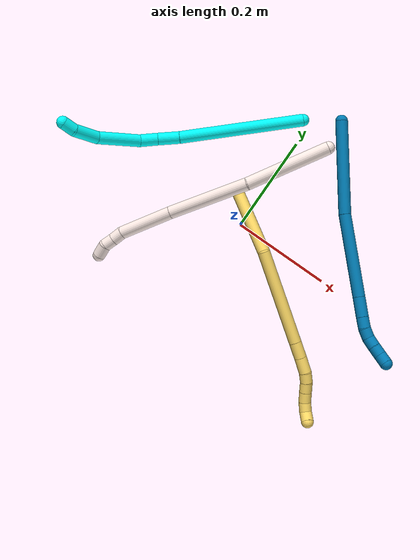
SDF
<sdf version="1.7">
 <world name="default">
  <model name="photoneo_s_sensor">
   <static>1</static>
   <pose>0 0 2 1.57079 1.57079 3.14159</pose>
   <link name="link">
    <inertial><mass>0.1</mass></inertial>
    <sensor name="sensor" type="depth">
     <update_rate>30</update_rate>
     <camera>
      <horizontal_fov>1.22</horizontal_fov>
      <image><width>1920</width><height>1200</height><format>B8G8R8</format></image>
      <clip><near>0.1</near><far>4</far></clip>
      <depth_camera><output>points</output></depth_camera>
     </camera>
     <plugin name="camera_plugin" filename="libgazebo_ros_depth_camera.so">
      <baseline>0.2</baseline>
      <alwaysOn>1</alwaysOn>
      <updateRate>0.0</updateRate>
      <cameraName>camera_ir</cameraName>
      <imageTopicName>/camera/color/image_raw</imageTopicName>
      <cameraInfoTopicName>/camera/color/camera_info</cameraInfoTopicName>
      <depthImageTopicName>/camera/depth/image_raw</depthImageTopicName>
      <depthImageCameraInfoTopicName>/camera/depth/camera_info</depthImageCameraInfoTopicName>
      <pointCloudTopicName>/camera/depth/points</pointCloudTopicName>
      <frameName>fr_optical</frameName>
      <pointCloudCutoff>0.1</pointCloudCutoff>
      <pointCloudCutoffMax>2.0</pointCloudCutoffMax>
      <distortionK1>0</distortionK1>
      <distortionK2>0</distortionK2>
      <distortionK3>0</distortionK3>
      <distortionT1>0</distortionT1>
      <distortionT2>0</distortionT2>
      <CxPrime>0</CxPrime>
      <Cx>0</Cx>
      <Cy>0</Cy>
      <focalLength>0</focalLength>
      <hackBaseline>0</hackBaseline>
     </plugin>
    </sensor>
   </link>
  </model>
  <model name="bin">
   <static>1</static>
   <link name="bottom">
    <collision name="collision-bottom">
     <pose>0 0 -0.01 0 -0 0</pose>
     <geometry><box><size>0.8 0.6 0.02</size></box></geometry>
     <surface>
      <friction><ode><mu>100</mu><mu2>100</mu2></ode></friction>
      <contact><collide_bitmask>65535</collide_bitmask></contact>
     </surface>
    </collision>
   </link>
   <link name="west_wall">
    <collision name="collision-west_wall">
     <pose>-0.41 0 0.1 0 -0 0</pose>
     <geometry><box><size>0.02 0.6 0.2</size></box></geometry>
     <surface>
      <friction><ode><mu>100</mu><mu2>100</mu2></ode></friction>
      <contact><collide_bitmask>65535</collide_bitmask></contact>
     </surface>
    </collision>
   </link>
   <link name="east_wall">
    <collision name="collision-east_wall">
     <pose>0.41 0 0.1 0 -0 0</pose>
     <geometry><box><size>0.02 0.6 0.2</size></box></geometry>
     <surface>
      <friction><ode><mu>100</mu><mu2>100</mu2></ode></friction>
      <contact><collide_bitmask>65535</collide_bitmask></contact>
     </surface>
    </collision>
   </link>
   <link name="south_wall">
    <collision name="collision-south_wall">
     <pose>0 -0.31 0.1 0 -0 0</pose>
     <geometry><box><size>0.8 0.02 0.2</size></box></geometry>
     <surface>
      <friction><ode><mu>100</mu><mu2>100</mu2></ode></friction>
      <contact><collide_bitmask>65535</collide_bitmask></contact>
     </surface>
    </collision>
   </link>
   <link name="north_wall">
    <collision name="collision-north_wall">
     <pose>0 0.31 0.1 0 -0 0</pose>
     <geometry><box><size>0.8 0.02 0.2</size></box></geometry>
     <surface>
      <friction><ode><mu>100</mu><mu2>100</mu2></ode></friction>
      <contact><collide_bitmask>65535</collide_bitmask></contact>
     </surface>
    </collision>
   </link>
  </model>
  <model name="3">
   <static>0</static>
   <link name="3">
    <collision name="collision-cylinder-e_1_1_4">
     <pose>-0.068762 -0.102121 0.024485 1.33547 -0.579728 -0.46201</pose>
     <geometry><cylinder><radius>0.0125</radius><length>0.25105</length></cylinder></geometry>
     <surface>
      <friction><ode><mu>1.16</mu><mu2>1.16</mu2><slip1>0</slip1><slip2>0</slip2></ode></friction>
      <contact><ode><kp>1e+06</kp><kd>1</kd><max_vel>0</max_vel><min_depth>0.001</min_depth></ode></contact>
     </surface>
    </collision>
    <visual name="visual-cylinder-e_1_1_4">
     <pose>-0.068762 -0.102121 0.024485 1.33547 -0.579728 -0.46201</pose>
     <geometry><cylinder><radius>0.0125</radius><length>0.25105</length></cylinder></geometry>
     <material><ambient>0.003922 1 0.996078 1</ambient></material>
    </visual>
    <collision name="collision-cylinder-e_2_4_5">
     <pose>-0.14841 -0.223169 0.05291 1.36558 -0.512849 -0.420189</pose>
     <geometry><cylinder><radius>0.0125</radius><length>0.044373</length></cylinder></geometry>
     <surface>
      <friction><ode><mu>1.16</mu><mu2>1.16</mu2><slip1>0</slip1><slip2>0</slip2></ode></friction>
      <contact><ode><kp>1e+06</kp><kd>1</kd><max_vel>0</max_vel><min_depth>0.001</min_depth></ode></contact>
     </surface>
    </collision>
    <visual name="visual-cylinder-e_2_4_5">
     <pose>-0.14841 -0.223169 0.05291 1.36558 -0.512849 -0.420189</pose>
     <geometry><cylinder><radius>0.0125</radius><length>0.044373</length></cylinder></geometry>
     <material><ambient>0.003922 1 0.996078 1</ambient></material>
    </visual>
    <collision name="collision-cylinder-e_3_5_6">
     <pose>-0.171051 -0.256607 0.05695 1.5639 -0.680803 -0.676476</pose>
     <geometry><cylinder><radius>0.0125</radius><length>0.03735</length></cylinder></geometry>
     <surface>
      <friction><ode><mu>1.16</mu><mu2>1.16</mu2><slip1>0</slip1><slip2>0</slip2></ode></friction>
      <contact><ode><kp>1e+06</kp><kd>1</kd><max_vel>0</max_vel><min_depth>0.001</min_depth></ode></contact>
     </surface>
    </collision>
    <visual name="visual-cylinder-e_3_5_6">
     <pose>-0.171051 -0.256607 0.05695 1.5639 -0.680803 -0.676476</pose>
     <geometry><cylinder><radius>0.0125</radius><length>0.03735</length></cylinder></geometry>
     <material><ambient>0.003922 1 0.996078 1</ambient></material>
    </visual>
    <collision name="collision-cylinder-e_4_6_7">
     <pose>-0.211888 -0.302415 0.042945 1.9942 -0.702872 -1.03222</pose>
     <geometry><cylinder><radius>0.0125</radius><length>0.089985</length></cylinder></geometry>
     <surface>
      <friction><ode><mu>1.16</mu><mu2>1.16</mu2><slip1>0</slip1><slip2>0</slip2></ode></friction>
      <contact><ode><kp>1e+06</kp><kd>1</kd><max_vel>0</max_vel><min_depth>0.001</min_depth></ode></contact>
     </surface>
    </collision>
    <visual name="visual-cylinder-e_4_6_7">
     <pose>-0.211888 -0.302415 0.042945 1.9942 -0.702872 -1.03222</pose>
     <geometry><cylinder><radius>0.0125</radius><length>0.089985</length></cylinder></geometry>
     <material><ambient>0.003922 1 0.996078 1</ambient></material>
    </visual>
    <collision name="collision-cylinder-e_5_7_8">
     <pose>-0.25458 -0.350454 0.014808 2.26841 -0.557115 -1.0997</pose>
     <geometry><cylinder><radius>0.0125</radius><length>0.051473</length></cylinder></geometry>
     <surface>
      <friction><ode><mu>1.16</mu><mu2>1.16</mu2><slip1>0</slip1><slip2>0</slip2></ode></friction>
      <contact><ode><kp>1e+06</kp><kd>1</kd><max_vel>0</max_vel><min_depth>0.001</min_depth></ode></contact>
     </surface>
    </collision>
    <visual name="visual-cylinder-e_5_7_8">
     <pose>-0.25458 -0.350454 0.014808 2.26841 -0.557115 -1.0997</pose>
     <geometry><cylinder><radius>0.0125</radius><length>0.051473</length></cylinder></geometry>
     <material><ambient>0.003922 1 0.996078 1</ambient></material>
    </visual>
    <collision name="collision-cylinder-e_6_8_2">
     <pose>-0.270812 -0.377533 -0.006455 2.1811 -0.20512 -0.390123</pose>
     <geometry><cylinder><radius>0.0125</radius><length>0.02577</length></cylinder></geometry>
     <surface>
      <friction><ode><mu>1.16</mu><mu2>1.16</mu2><slip1>0</slip1><slip2>0</slip2></ode></friction>
      <contact><ode><kp>1e+06</kp><kd>1</kd><max_vel>0</max_vel><min_depth>0.001</min_depth></ode></contact>
     </surface>
    </collision>
    <visual name="visual-cylinder-e_6_8_2">
     <pose>-0.270812 -0.377533 -0.006455 2.1811 -0.20512 -0.390123</pose>
     <geometry><cylinder><radius>0.0125</radius><length>0.02577</length></cylinder></geometry>
     <material><ambient>0.003922 1 0.996078 1</ambient></material>
    </visual>
    <collision name="collision-sphere-2">
     <pose>-0.273437 -0.38787 -0.013684 0 -0 0</pose>
     <geometry><sphere><radius>0.0125</radius></sphere></geometry>
     <surface>
      <friction><ode><mu>1.16</mu><mu2>1.16</mu2><slip1>0</slip1><slip2>0</slip2></ode></friction>
      <contact><ode><kp>1e+06</kp><kd>1</kd><max_vel>0</max_vel><min_depth>0.001</min_depth></ode></contact>
     </surface>
    </collision>
    <visual name="visual-sphere-2">
     <pose>-0.273437 -0.38787 -0.013684 0 -0 0</pose>
     <geometry><sphere><radius>0.0125</radius></sphere></geometry>
     <material><ambient>0.003922 1 0.996078 1</ambient></material>
    </visual>
    <collision name="collision-sphere-4">
     <pose>-0.137524 -0.204242 0.048971 0 -0 0</pose>
     <geometry><sphere><radius>0.0125</radius></sphere></geometry>
     <surface>
      <friction><ode><mu>1.16</mu><mu2>1.16</mu2><slip1>0</slip1><slip2>0</slip2></ode></friction>
      <contact><ode><kp>1e+06</kp><kd>1</kd><max_vel>0</max_vel><min_depth>0.001</min_depth></ode></contact>
     </surface>
    </collision>
    <visual name="visual-sphere-4">
     <pose>-0.137524 -0.204242 0.048971 0 -0 0</pose>
     <geometry><sphere><radius>0.0125</radius></sphere></geometry>
     <material><ambient>0.003922 1 0.996078 1</ambient></material>
    </visual>
    <collision name="collision-sphere-1">
     <geometry><sphere><radius>0.0125</radius></sphere></geometry>
     <surface>
      <friction><ode><mu>1.16</mu><mu2>1.16</mu2><slip1>0</slip1><slip2>0</slip2></ode></friction>
      <contact><ode><kp>1e+06</kp><kd>1</kd><max_vel>0</max_vel><min_depth>0.001</min_depth></ode></contact>
     </surface>
    </collision>
    <visual name="visual-sphere-1">
     <geometry><sphere><radius>0.0125</radius></sphere></geometry>
     <material><ambient>0.003922 1 0.996078 1</ambient></material>
    </visual>
    <collision name="collision-sphere-8">
     <pose>-0.268188 -0.367195 0.000775 0 -0 0</pose>
     <geometry><sphere><radius>0.0125</radius></sphere></geometry>
     <surface>
      <friction><ode><mu>1.16</mu><mu2>1.16</mu2><slip1>0</slip1><slip2>0</slip2></ode></friction>
      <contact><ode><kp>1e+06</kp><kd>1</kd><max_vel>0</max_vel><min_depth>0.001</min_depth></ode></contact>
     </surface>
    </collision>
    <visual name="visual-sphere-8">
     <pose>-0.268188 -0.367195 0.000775 0 -0 0</pose>
     <geometry><sphere><radius>0.0125</radius></sphere></geometry>
     <material><ambient>0.003922 1 0.996078 1</ambient></material>
    </visual>
    <collision name="collision-sphere-5">
     <pose>-0.159296 -0.242096 0.05685 0 -0 0</pose>
     <geometry><sphere><radius>0.0125</radius></sphere></geometry>
     <surface>
      <friction><ode><mu>1.16</mu><mu2>1.16</mu2><slip1>0</slip1><slip2>0</slip2></ode></friction>
      <contact><ode><kp>1e+06</kp><kd>1</kd><max_vel>0</max_vel><min_depth>0.001</min_depth></ode></contact>
     </surface>
    </collision>
    <visual name="visual-sphere-5">
     <pose>-0.159296 -0.242096 0.05685 0 -0 0</pose>
     <geometry><sphere><radius>0.0125</radius></sphere></geometry>
     <material><ambient>0.003922 1 0.996078 1</ambient></material>
    </visual>
    <collision name="collision-sphere-6">
     <pose>-0.182805 -0.271118 0.05705 0 -0 0</pose>
     <geometry><sphere><radius>0.0125</radius></sphere></geometry>
     <surface>
      <friction><ode><mu>1.16</mu><mu2>1.16</mu2><slip1>0</slip1><slip2>0</slip2></ode></friction>
      <contact><ode><kp>1e+06</kp><kd>1</kd><max_vel>0</max_vel><min_depth>0.001</min_depth></ode></contact>
     </surface>
    </collision>
    <visual name="visual-sphere-6">
     <pose>-0.182805 -0.271118 0.05705 0 -0 0</pose>
     <geometry><sphere><radius>0.0125</radius></sphere></geometry>
     <material><ambient>0.003922 1 0.996078 1</ambient></material>
    </visual>
    <collision name="collision-sphere-7">
     <pose>-0.240972 -0.333713 0.028841 0 -0 0</pose>
     <geometry><sphere><radius>0.0125</radius></sphere></geometry>
     <surface>
      <friction><ode><mu>1.16</mu><mu2>1.16</mu2><slip1>0</slip1><slip2>0</slip2></ode></friction>
      <contact><ode><kp>1e+06</kp><kd>1</kd><max_vel>0</max_vel><min_depth>0.001</min_depth></ode></contact>
     </surface>
    </collision>
    <visual name="visual-sphere-7">
     <pose>-0.240972 -0.333713 0.028841 0 -0 0</pose>
     <geometry><sphere><radius>0.0125</radius></sphere></geometry>
     <material><ambient>0.003922 1 0.996078 1</ambient></material>
    </visual>
    <inertial>
     <pose>-0.138773 -0.20021 0.030164 0 -0 0</pose>
     <mass>0.5</mass>
     <inertia>
      <ixx>0.000462</ixx>
      <ixy>0</ixy>
      <ixz>0</ixz>
      <iyy>3.2e-05</iyy>
      <iyz>0</iyz>
      <izz>0.001932</izz>
     </inertia>
    </inertial>
   </link>
   <pose>-0.016723 0.245797 0.010914 2.97542 0.551251 1.62671</pose>
  </model>
  <model name="5">
   <static>0</static>
   <link name="5">
    <collision name="collision-cylinder-e_1_1_4">
     <pose>0.007919 0.009028 0.070058 -0.12816 0.111646 -0.007171</pose>
     <geometry><cylinder><radius>0.0125</radius><length>0.142159</length></cylinder></geometry>
     <surface>
      <friction><ode><mu>1.16</mu><mu2>1.16</mu2><slip1>0</slip1><slip2>0</slip2></ode></friction>
      <contact><ode><kp>1e+06</kp><kd>1</kd><max_vel>0</max_vel><min_depth>0.001</min_depth></ode></contact>
     </surface>
    </collision>
    <visual name="visual-cylinder-e_1_1_4">
     <pose>0.007919 0.009028 0.070058 -0.12816 0.111646 -0.007171</pose>
     <geometry><cylinder><radius>0.0125</radius><length>0.142159</length></cylinder></geometry>
     <material><ambient>1 0.858824 0.4 1</ambient></material>
    </visual>
    <collision name="collision-cylinder-e_2_4_5">
     <pose>0.043481 -0.002175 0.229282 0.223115 0.293588 0.033124</pose>
     <geometry><cylinder><radius>0.0125</radius><length>0.191041</length></cylinder></geometry>
     <surface>
      <friction><ode><mu>1.16</mu><mu2>1.16</mu2><slip1>0</slip1><slip2>0</slip2></ode></friction>
      <contact><ode><kp>1e+06</kp><kd>1</kd><max_vel>0</max_vel><min_depth>0.001</min_depth></ode></contact>
     </surface>
    </collision>
    <visual name="visual-cylinder-e_2_4_5">
     <pose>0.043481 -0.002175 0.229282 0.223115 0.293588 0.033124</pose>
     <geometry><cylinder><radius>0.0125</radius><length>0.191041</length></cylinder></geometry>
     <material><ambient>1 0.858824 0.4 1</ambient></material>
    </visual>
    <collision name="collision-cylinder-e_3_5_6">
     <pose>0.075811 -0.02588 0.333593 0.225465 0.293002 0.033408</pose>
     <geometry><cylinder><radius>0.0125</radius><length>0.032457</length></cylinder></geometry>
     <surface>
      <friction><ode><mu>1.16</mu><mu2>1.16</mu2><slip1>0</slip1><slip2>0</slip2></ode></friction>
      <contact><ode><kp>1e+06</kp><kd>1</kd><max_vel>0</max_vel><min_depth>0.001</min_depth></ode></contact>
     </surface>
    </collision>
    <visual name="visual-cylinder-e_3_5_6">
     <pose>0.075811 -0.02588 0.333593 0.225465 0.293002 0.033408</pose>
     <geometry><cylinder><radius>0.0125</radius><length>0.032457</length></cylinder></geometry>
     <material><ambient>1 0.858824 0.4 1</ambient></material>
    </visual>
    <collision name="collision-cylinder-e_4_6_7">
     <pose>0.084431 -0.032376 0.363849 0.19739 0.249852 0.024868</pose>
     <geometry><cylinder><radius>0.0125</radius><length>0.031812</length></cylinder></geometry>
     <surface>
      <friction><ode><mu>1.16</mu><mu2>1.16</mu2><slip1>0</slip1><slip2>0</slip2></ode></friction>
      <contact><ode><kp>1e+06</kp><kd>1</kd><max_vel>0</max_vel><min_depth>0.001</min_depth></ode></contact>
     </surface>
    </collision>
    <visual name="visual-cylinder-e_4_6_7">
     <pose>0.084431 -0.032376 0.363849 0.19739 0.249852 0.024868</pose>
     <geometry><cylinder><radius>0.0125</radius><length>0.031812</length></cylinder></geometry>
     <material><ambient>1 0.858824 0.4 1</ambient></material>
    </visual>
    <collision name="collision-cylinder-e_5_7_8">
     <pose>0.090032 -0.039379 0.388057 0.412586 0.166474 0.034915</pose>
     <geometry><cylinder><radius>0.0125</radius><length>0.020135</length></cylinder></geometry>
     <surface>
      <friction><ode><mu>1.16</mu><mu2>1.16</mu2><slip1>0</slip1><slip2>0</slip2></ode></friction>
      <contact><ode><kp>1e+06</kp><kd>1</kd><max_vel>0</max_vel><min_depth>0.001</min_depth></ode></contact>
     </surface>
    </collision>
    <visual name="visual-cylinder-e_5_7_8">
     <pose>0.090032 -0.039379 0.388057 0.412586 0.166474 0.034915</pose>
     <geometry><cylinder><radius>0.0125</radius><length>0.020135</length></cylinder></geometry>
     <material><ambient>1 0.858824 0.4 1</ambient></material>
    </visual>
    <collision name="collision-cylinder-e_6_8_9">
     <pose>0.092063 -0.048826 0.405953 0.55577 0.03501 0.009988</pose>
     <geometry><cylinder><radius>0.0125</radius><length>0.020731</length></cylinder></geometry>
     <surface>
      <friction><ode><mu>1.16</mu><mu2>1.16</mu2><slip1>0</slip1><slip2>0</slip2></ode></friction>
      <contact><ode><kp>1e+06</kp><kd>1</kd><max_vel>0</max_vel><min_depth>0.001</min_depth></ode></contact>
     </surface>
    </collision>
    <visual name="visual-cylinder-e_6_8_9">
     <pose>0.092063 -0.048826 0.405953 0.55577 0.03501 0.009988</pose>
     <geometry><cylinder><radius>0.0125</radius><length>0.020731</length></cylinder></geometry>
     <material><ambient>1 0.858824 0.4 1</ambient></material>
    </visual>
    <collision name="collision-cylinder-e_7_9_10">
     <pose>0.092552 -0.059465 0.423984 0.510786 0.011855 0.003095</pose>
     <geometry><cylinder><radius>0.0125</radius><length>0.021166</length></cylinder></geometry>
     <surface>
      <friction><ode><mu>1.16</mu><mu2>1.16</mu2><slip1>0</slip1><slip2>0</slip2></ode></friction>
      <contact><ode><kp>1e+06</kp><kd>1</kd><max_vel>0</max_vel><min_depth>0.001</min_depth></ode></contact>
     </surface>
    </collision>
    <visual name="visual-cylinder-e_7_9_10">
     <pose>0.092552 -0.059465 0.423984 0.510786 0.011855 0.003095</pose>
     <geometry><cylinder><radius>0.0125</radius><length>0.021166</length></cylinder></geometry>
     <material><ambient>1 0.858824 0.4 1</ambient></material>
    </visual>
    <collision name="collision-cylinder-e_8_10_11">
     <pose>0.092943 -0.067511 0.442895 0.288565 0.026367 0.003831</pose>
     <geometry><cylinder><radius>0.0125</radius><length>0.020201</length></cylinder></geometry>
     <surface>
      <friction><ode><mu>1.16</mu><mu2>1.16</mu2><slip1>0</slip1><slip2>0</slip2></ode></friction>
      <contact><ode><kp>1e+06</kp><kd>1</kd><max_vel>0</max_vel><min_depth>0.001</min_depth></ode></contact>
     </surface>
    </collision>
    <visual name="visual-cylinder-e_8_10_11">
     <pose>0.092943 -0.067511 0.442895 0.288565 0.026367 0.003831</pose>
     <geometry><cylinder><radius>0.0125</radius><length>0.020201</length></cylinder></geometry>
     <material><ambient>1 0.858824 0.4 1</ambient></material>
    </visual>
    <collision name="collision-cylinder-e_9_11_2">
     <pose>0.091298 -0.068773 0.462411 -0.162437 -0.189448 0.015467</pose>
     <geometry><cylinder><radius>0.0125</radius><length>0.020298</length></cylinder></geometry>
     <surface>
      <friction><ode><mu>1.16</mu><mu2>1.16</mu2><slip1>0</slip1><slip2>0</slip2></ode></friction>
      <contact><ode><kp>1e+06</kp><kd>1</kd><max_vel>0</max_vel><min_depth>0.001</min_depth></ode></contact>
     </surface>
    </collision>
    <visual name="visual-cylinder-e_9_11_2">
     <pose>0.091298 -0.068773 0.462411 -0.162437 -0.189448 0.015467</pose>
     <geometry><cylinder><radius>0.0125</radius><length>0.020298</length></cylinder></geometry>
     <material><ambient>1 0.858824 0.4 1</ambient></material>
    </visual>
    <collision name="collision-sphere-2">
     <pose>0.089387 -0.067161 0.472247 0 -0 0</pose>
     <geometry><sphere><radius>0.0125</radius></sphere></geometry>
     <surface>
      <friction><ode><mu>1.16</mu><mu2>1.16</mu2><slip1>0</slip1><slip2>0</slip2></ode></friction>
      <contact><ode><kp>1e+06</kp><kd>1</kd><max_vel>0</max_vel><min_depth>0.001</min_depth></ode></contact>
     </surface>
    </collision>
    <visual name="visual-sphere-2">
     <pose>0.089387 -0.067161 0.472247 0 -0 0</pose>
     <geometry><sphere><radius>0.0125</radius></sphere></geometry>
     <material><ambient>1 0.858824 0.4 1</ambient></material>
    </visual>
    <collision name="collision-sphere-11">
     <pose>0.09321 -0.070385 0.452575 0 -0 0</pose>
     <geometry><sphere><radius>0.0125</radius></sphere></geometry>
     <surface>
      <friction><ode><mu>1.16</mu><mu2>1.16</mu2><slip1>0</slip1><slip2>0</slip2></ode></friction>
      <contact><ode><kp>1e+06</kp><kd>1</kd><max_vel>0</max_vel><min_depth>0.001</min_depth></ode></contact>
     </surface>
    </collision>
    <visual name="visual-sphere-11">
     <pose>0.09321 -0.070385 0.452575 0 -0 0</pose>
     <geometry><sphere><radius>0.0125</radius></sphere></geometry>
     <material><ambient>1 0.858824 0.4 1</ambient></material>
    </visual>
    <collision name="collision-sphere-10">
     <pose>0.092677 -0.064638 0.433216 0 -0 0</pose>
     <geometry><sphere><radius>0.0125</radius></sphere></geometry>
     <surface>
      <friction><ode><mu>1.16</mu><mu2>1.16</mu2><slip1>0</slip1><slip2>0</slip2></ode></friction>
      <contact><ode><kp>1e+06</kp><kd>1</kd><max_vel>0</max_vel><min_depth>0.001</min_depth></ode></contact>
     </surface>
    </collision>
    <visual name="visual-sphere-10">
     <pose>0.092677 -0.064638 0.433216 0 -0 0</pose>
     <geometry><sphere><radius>0.0125</radius></sphere></geometry>
     <material><ambient>1 0.858824 0.4 1</ambient></material>
    </visual>
    <collision name="collision-sphere-9">
     <pose>0.092426 -0.054292 0.414753 0 -0 0</pose>
     <geometry><sphere><radius>0.0125</radius></sphere></geometry>
     <surface>
      <friction><ode><mu>1.16</mu><mu2>1.16</mu2><slip1>0</slip1><slip2>0</slip2></ode></friction>
      <contact><ode><kp>1e+06</kp><kd>1</kd><max_vel>0</max_vel><min_depth>0.001</min_depth></ode></contact>
     </surface>
    </collision>
    <visual name="visual-sphere-9">
     <pose>0.092426 -0.054292 0.414753 0 -0 0</pose>
     <geometry><sphere><radius>0.0125</radius></sphere></geometry>
     <material><ambient>1 0.858824 0.4 1</ambient></material>
    </visual>
    <collision name="collision-sphere-4">
     <pose>0.015839 0.018056 0.140115 0 -0 0</pose>
     <geometry><sphere><radius>0.0125</radius></sphere></geometry>
     <surface>
      <friction><ode><mu>1.16</mu><mu2>1.16</mu2><slip1>0</slip1><slip2>0</slip2></ode></friction>
      <contact><ode><kp>1e+06</kp><kd>1</kd><max_vel>0</max_vel><min_depth>0.001</min_depth></ode></contact>
     </surface>
    </collision>
    <visual name="visual-sphere-4">
     <pose>0.015839 0.018056 0.140115 0 -0 0</pose>
     <geometry><sphere><radius>0.0125</radius></sphere></geometry>
     <material><ambient>1 0.858824 0.4 1</ambient></material>
    </visual>
    <collision name="collision-sphere-1">
     <geometry><sphere><radius>0.0125</radius></sphere></geometry>
     <surface>
      <friction><ode><mu>1.16</mu><mu2>1.16</mu2><slip1>0</slip1><slip2>0</slip2></ode></friction>
      <contact><ode><kp>1e+06</kp><kd>1</kd><max_vel>0</max_vel><min_depth>0.001</min_depth></ode></contact>
     </surface>
    </collision>
    <visual name="visual-sphere-1">
     <geometry><sphere><radius>0.0125</radius></sphere></geometry>
     <material><ambient>1 0.858824 0.4 1</ambient></material>
    </visual>
    <collision name="collision-sphere-8">
     <pose>0.0917 -0.04336 0.397152 0 -0 0</pose>
     <geometry><sphere><radius>0.0125</radius></sphere></geometry>
     <surface>
      <friction><ode><mu>1.16</mu><mu2>1.16</mu2><slip1>0</slip1><slip2>0</slip2></ode></friction>
      <contact><ode><kp>1e+06</kp><kd>1</kd><max_vel>0</max_vel><min_depth>0.001</min_depth></ode></contact>
     </surface>
    </collision>
    <visual name="visual-sphere-8">
     <pose>0.0917 -0.04336 0.397152 0 -0 0</pose>
     <geometry><sphere><radius>0.0125</radius></sphere></geometry>
     <material><ambient>1 0.858824 0.4 1</ambient></material>
    </visual>
    <collision name="collision-sphere-5">
     <pose>0.071124 -0.022406 0.318449 0 -0 0</pose>
     <geometry><sphere><radius>0.0125</radius></sphere></geometry>
     <surface>
      <friction><ode><mu>1.16</mu><mu2>1.16</mu2><slip1>0</slip1><slip2>0</slip2></ode></friction>
      <contact><ode><kp>1e+06</kp><kd>1</kd><max_vel>0</max_vel><min_depth>0.001</min_depth></ode></contact>
     </surface>
    </collision>
    <visual name="visual-sphere-5">
     <pose>0.071124 -0.022406 0.318449 0 -0 0</pose>
     <geometry><sphere><radius>0.0125</radius></sphere></geometry>
     <material><ambient>1 0.858824 0.4 1</ambient></material>
    </visual>
    <collision name="collision-sphere-6">
     <pose>0.080498 -0.029353 0.348736 0 -0 0</pose>
     <geometry><sphere><radius>0.0125</radius></sphere></geometry>
     <surface>
      <friction><ode><mu>1.16</mu><mu2>1.16</mu2><slip1>0</slip1><slip2>0</slip2></ode></friction>
      <contact><ode><kp>1e+06</kp><kd>1</kd><max_vel>0</max_vel><min_depth>0.001</min_depth></ode></contact>
     </surface>
    </collision>
    <visual name="visual-sphere-6">
     <pose>0.080498 -0.029353 0.348736 0 -0 0</pose>
     <geometry><sphere><radius>0.0125</radius></sphere></geometry>
     <material><ambient>1 0.858824 0.4 1</ambient></material>
    </visual>
    <collision name="collision-sphere-7">
     <pose>0.088364 -0.035398 0.378962 0 -0 0</pose>
     <geometry><sphere><radius>0.0125</radius></sphere></geometry>
     <surface>
      <friction><ode><mu>1.16</mu><mu2>1.16</mu2><slip1>0</slip1><slip2>0</slip2></ode></friction>
      <contact><ode><kp>1e+06</kp><kd>1</kd><max_vel>0</max_vel><min_depth>0.001</min_depth></ode></contact>
     </surface>
    </collision>
    <visual name="visual-sphere-7">
     <pose>0.088364 -0.035398 0.378962 0 -0 0</pose>
     <geometry><sphere><radius>0.0125</radius></sphere></geometry>
     <material><ambient>1 0.858824 0.4 1</ambient></material>
    </visual>
    <inertial>
     <pose>0.04798 -0.013651 0.2394 0 -0 0</pose>
     <mass>0.5</mass>
     <inertia>
      <ixx>0.000846</ixx>
      <ixy>0</ixy>
      <ixz>0</ixz>
      <iyy>0.000845</iyy>
      <iyz>0</iyz>
      <izz>-6.5e-05</izz>
     </inertia>
    </inertial>
   </link>
   <pose>-0.046537 0.054428 0.0125 1.2531 0.59744 0.648308</pose>
  </model>
  <model name="9">
   <static>0</static>
   <link name="9">
    <collision name="collision-cylinder-e_1_1_4">
     <pose>0.03824 -0.086315 0.004241 1.5217 0.416594 0.39716</pose>
     <geometry><cylinder><radius>0.0125</radius><length>0.189003</length></cylinder></geometry>
     <surface>
      <friction><ode><mu>1.16</mu><mu2>1.16</mu2><slip1>0</slip1><slip2>0</slip2></ode></friction>
      <contact><ode><kp>1e+06</kp><kd>1</kd><max_vel>0</max_vel><min_depth>0.001</min_depth></ode></contact>
     </surface>
    </collision>
    <visual name="visual-cylinder-e_1_1_4">
     <pose>0.03824 -0.086315 0.004241 1.5217 0.416594 0.39716</pose>
     <geometry><cylinder><radius>0.0125</radius><length>0.189003</length></cylinder></geometry>
     <material><ambient>0 0.490196 0.709804 1</ambient></material>
    </visual>
    <collision name="collision-cylinder-e_2_4_5">
     <pose>0.119998 -0.243739 0.013843 1.49555 0.54793 0.509939</pose>
     <geometry><cylinder><radius>0.0125</radius><length>0.167081</length></cylinder></geometry>
     <surface>
      <friction><ode><mu>1.16</mu><mu2>1.16</mu2><slip1>0</slip1><slip2>0</slip2></ode></friction>
      <contact><ode><kp>1e+06</kp><kd>1</kd><max_vel>0</max_vel><min_depth>0.001</min_depth></ode></contact>
     </surface>
    </collision>
    <visual name="visual-cylinder-e_2_4_5">
     <pose>0.119998 -0.243739 0.013843 1.49555 0.54793 0.509939</pose>
     <geometry><cylinder><radius>0.0125</radius><length>0.167081</length></cylinder></geometry>
     <material><ambient>0 0.490196 0.709804 1</ambient></material>
    </visual>
    <collision name="collision-cylinder-e_3_5_6">
     <pose>0.173884 -0.332086 0.02172 1.42587 0.53684 0.466978</pose>
     <geometry><cylinder><radius>0.0125</radius><length>0.040545</length></cylinder></geometry>
     <surface>
      <friction><ode><mu>1.16</mu><mu2>1.16</mu2><slip1>0</slip1><slip2>0</slip2></ode></friction>
      <contact><ode><kp>1e+06</kp><kd>1</kd><max_vel>0</max_vel><min_depth>0.001</min_depth></ode></contact>
     </surface>
    </collision>
    <visual name="visual-cylinder-e_3_5_6">
     <pose>0.173884 -0.332086 0.02172 1.42587 0.53684 0.466978</pose>
     <geometry><cylinder><radius>0.0125</radius><length>0.040545</length></cylinder></geometry>
     <material><ambient>0 0.490196 0.709804 1</ambient></material>
    </visual>
    <collision name="collision-cylinder-e_4_6_7">
     <pose>0.190189 -0.358758 0.025884 1.39784 0.554982 0.46994</pose>
     <geometry><cylinder><radius>0.0125</radius><length>0.022536</length></cylinder></geometry>
     <surface>
      <friction><ode><mu>1.16</mu><mu2>1.16</mu2><slip1>0</slip1><slip2>0</slip2></ode></friction>
      <contact><ode><kp>1e+06</kp><kd>1</kd><max_vel>0</max_vel><min_depth>0.001</min_depth></ode></contact>
     </surface>
    </collision>
    <visual name="visual-cylinder-e_4_6_7">
     <pose>0.190189 -0.358758 0.025884 1.39784 0.554982 0.46994</pose>
     <geometry><cylinder><radius>0.0125</radius><length>0.022536</length></cylinder></geometry>
     <material><ambient>0 0.490196 0.709804 1</ambient></material>
    </visual>
    <collision name="collision-cylinder-e_5_7_8">
     <pose>0.202978 -0.375501 0.028084 1.49548 0.751677 0.701612</pose>
     <geometry><cylinder><radius>0.0125</radius><length>0.020065</length></cylinder></geometry>
     <surface>
      <friction><ode><mu>1.16</mu><mu2>1.16</mu2><slip1>0</slip1><slip2>0</slip2></ode></friction>
      <contact><ode><kp>1e+06</kp><kd>1</kd><max_vel>0</max_vel><min_depth>0.001</min_depth></ode></contact>
     </surface>
    </collision>
    <visual name="visual-cylinder-e_5_7_8">
     <pose>0.202978 -0.375501 0.028084 1.49548 0.751677 0.701612</pose>
     <geometry><cylinder><radius>0.0125</radius><length>0.020065</length></cylinder></geometry>
     <material><ambient>0 0.490196 0.709804 1</ambient></material>
    </visual>
    <collision name="collision-cylinder-e_6_8_9">
     <pose>0.218002 -0.388492 0.031344 1.12607 0.914521 0.602253</pose>
     <geometry><cylinder><radius>0.0125</radius><length>0.020632</length></cylinder></geometry>
     <surface>
      <friction><ode><mu>1.16</mu><mu2>1.16</mu2><slip1>0</slip1><slip2>0</slip2></ode></friction>
      <contact><ode><kp>1e+06</kp><kd>1</kd><max_vel>0</max_vel><min_depth>0.001</min_depth></ode></contact>
     </surface>
    </collision>
    <visual name="visual-cylinder-e_6_8_9">
     <pose>0.218002 -0.388492 0.031344 1.12607 0.914521 0.602253</pose>
     <geometry><cylinder><radius>0.0125</radius><length>0.020632</length></cylinder></geometry>
     <material><ambient>0 0.490196 0.709804 1</ambient></material>
    </visual>
    <collision name="collision-cylinder-e_7_9_10">
     <pose>0.234338 -0.399482 0.036447 1.14687 0.951101 0.642146</pose>
     <geometry><cylinder><radius>0.0125</radius><length>0.020055</length></cylinder></geometry>
     <surface>
      <friction><ode><mu>1.16</mu><mu2>1.16</mu2><slip1>0</slip1><slip2>0</slip2></ode></friction>
      <contact><ode><kp>1e+06</kp><kd>1</kd><max_vel>0</max_vel><min_depth>0.001</min_depth></ode></contact>
     </surface>
    </collision>
    <visual name="visual-cylinder-e_7_9_10">
     <pose>0.234338 -0.399482 0.036447 1.14687 0.951101 0.642146</pose>
     <geometry><cylinder><radius>0.0125</radius><length>0.020055</length></cylinder></geometry>
     <material><ambient>0 0.490196 0.709804 1</ambient></material>
    </visual>
    <collision name="collision-cylinder-e_8_10_2">
     <pose>0.250143 -0.409812 0.042989 0.880525 0.865112 0.42836</pose>
     <geometry><cylinder><radius>0.0125</radius><length>0.020082</length></cylinder></geometry>
     <surface>
      <friction><ode><mu>1.16</mu><mu2>1.16</mu2><slip1>0</slip1><slip2>0</slip2></ode></friction>
      <contact><ode><kp>1e+06</kp><kd>1</kd><max_vel>0</max_vel><min_depth>0.001</min_depth></ode></contact>
     </surface>
    </collision>
    <visual name="visual-cylinder-e_8_10_2">
     <pose>0.250143 -0.409812 0.042989 0.880525 0.865112 0.42836</pose>
     <geometry><cylinder><radius>0.0125</radius><length>0.020082</length></cylinder></geometry>
     <material><ambient>0 0.490196 0.709804 1</ambient></material>
    </visual>
    <collision name="collision-sphere-2">
     <pose>0.257786 -0.414833 0.047136 0 -0 0</pose>
     <geometry><sphere><radius>0.0125</radius></sphere></geometry>
     <surface>
      <friction><ode><mu>1.16</mu><mu2>1.16</mu2><slip1>0</slip1><slip2>0</slip2></ode></friction>
      <contact><ode><kp>1e+06</kp><kd>1</kd><max_vel>0</max_vel><min_depth>0.001</min_depth></ode></contact>
     </surface>
    </collision>
    <visual name="visual-sphere-2">
     <pose>0.257786 -0.414833 0.047136 0 -0 0</pose>
     <geometry><sphere><radius>0.0125</radius></sphere></geometry>
     <material><ambient>0 0.490196 0.709804 1</ambient></material>
    </visual>
    <collision name="collision-sphere-10">
     <pose>0.2425 -0.40479 0.038843 0 -0 0</pose>
     <geometry><sphere><radius>0.0125</radius></sphere></geometry>
     <surface>
      <friction><ode><mu>1.16</mu><mu2>1.16</mu2><slip1>0</slip1><slip2>0</slip2></ode></friction>
      <contact><ode><kp>1e+06</kp><kd>1</kd><max_vel>0</max_vel><min_depth>0.001</min_depth></ode></contact>
     </surface>
    </collision>
    <visual name="visual-sphere-10">
     <pose>0.2425 -0.40479 0.038843 0 -0 0</pose>
     <geometry><sphere><radius>0.0125</radius></sphere></geometry>
     <material><ambient>0 0.490196 0.709804 1</ambient></material>
    </visual>
    <collision name="collision-sphere-9">
     <pose>0.226175 -0.394174 0.034051 0 -0 0</pose>
     <geometry><sphere><radius>0.0125</radius></sphere></geometry>
     <surface>
      <friction><ode><mu>1.16</mu><mu2>1.16</mu2><slip1>0</slip1><slip2>0</slip2></ode></friction>
      <contact><ode><kp>1e+06</kp><kd>1</kd><max_vel>0</max_vel><min_depth>0.001</min_depth></ode></contact>
     </surface>
    </collision>
    <visual name="visual-sphere-9">
     <pose>0.226175 -0.394174 0.034051 0 -0 0</pose>
     <geometry><sphere><radius>0.0125</radius></sphere></geometry>
     <material><ambient>0 0.490196 0.709804 1</ambient></material>
    </visual>
    <collision name="collision-sphere-4">
     <pose>0.07648 -0.17263 0.008483 0 -0 0</pose>
     <geometry><sphere><radius>0.0125</radius></sphere></geometry>
     <surface>
      <friction><ode><mu>1.16</mu><mu2>1.16</mu2><slip1>0</slip1><slip2>0</slip2></ode></friction>
      <contact><ode><kp>1e+06</kp><kd>1</kd><max_vel>0</max_vel><min_depth>0.001</min_depth></ode></contact>
     </surface>
    </collision>
    <visual name="visual-sphere-4">
     <pose>0.07648 -0.17263 0.008483 0 -0 0</pose>
     <geometry><sphere><radius>0.0125</radius></sphere></geometry>
     <material><ambient>0 0.490196 0.709804 1</ambient></material>
    </visual>
    <collision name="collision-sphere-1">
     <geometry><sphere><radius>0.0125</radius></sphere></geometry>
     <surface>
      <friction><ode><mu>1.16</mu><mu2>1.16</mu2><slip1>0</slip1><slip2>0</slip2></ode></friction>
      <contact><ode><kp>1e+06</kp><kd>1</kd><max_vel>0</max_vel><min_depth>0.001</min_depth></ode></contact>
     </surface>
    </collision>
    <visual name="visual-sphere-1">
     <geometry><sphere><radius>0.0125</radius></sphere></geometry>
     <material><ambient>0 0.490196 0.709804 1</ambient></material>
    </visual>
    <collision name="collision-sphere-8">
     <pose>0.209829 -0.382809 0.028636 0 -0 0</pose>
     <geometry><sphere><radius>0.0125</radius></sphere></geometry>
     <surface>
      <friction><ode><mu>1.16</mu><mu2>1.16</mu2><slip1>0</slip1><slip2>0</slip2></ode></friction>
      <contact><ode><kp>1e+06</kp><kd>1</kd><max_vel>0</max_vel><min_depth>0.001</min_depth></ode></contact>
     </surface>
    </collision>
    <visual name="visual-sphere-8">
     <pose>0.209829 -0.382809 0.028636 0 -0 0</pose>
     <geometry><sphere><radius>0.0125</radius></sphere></geometry>
     <material><ambient>0 0.490196 0.709804 1</ambient></material>
    </visual>
    <collision name="collision-sphere-5">
     <pose>0.163516 -0.314848 0.019204 0 -0 0</pose>
     <geometry><sphere><radius>0.0125</radius></sphere></geometry>
     <surface>
      <friction><ode><mu>1.16</mu><mu2>1.16</mu2><slip1>0</slip1><slip2>0</slip2></ode></friction>
      <contact><ode><kp>1e+06</kp><kd>1</kd><max_vel>0</max_vel><min_depth>0.001</min_depth></ode></contact>
     </surface>
    </collision>
    <visual name="visual-sphere-5">
     <pose>0.163516 -0.314848 0.019204 0 -0 0</pose>
     <geometry><sphere><radius>0.0125</radius></sphere></geometry>
     <material><ambient>0 0.490196 0.709804 1</ambient></material>
    </visual>
    <collision name="collision-sphere-6">
     <pose>0.184252 -0.349324 0.024236 0 -0 0</pose>
     <geometry><sphere><radius>0.0125</radius></sphere></geometry>
     <surface>
      <friction><ode><mu>1.16</mu><mu2>1.16</mu2><slip1>0</slip1><slip2>0</slip2></ode></friction>
      <contact><ode><kp>1e+06</kp><kd>1</kd><max_vel>0</max_vel><min_depth>0.001</min_depth></ode></contact>
     </surface>
    </collision>
    <visual name="visual-sphere-6">
     <pose>0.184252 -0.349324 0.024236 0 -0 0</pose>
     <geometry><sphere><radius>0.0125</radius></sphere></geometry>
     <material><ambient>0 0.490196 0.709804 1</ambient></material>
    </visual>
    <collision name="collision-sphere-7">
     <pose>0.196127 -0.368192 0.027533 0 -0 0</pose>
     <geometry><sphere><radius>0.0125</radius></sphere></geometry>
     <surface>
      <friction><ode><mu>1.16</mu><mu2>1.16</mu2><slip1>0</slip1><slip2>0</slip2></ode></friction>
      <contact><ode><kp>1e+06</kp><kd>1</kd><max_vel>0</max_vel><min_depth>0.001</min_depth></ode></contact>
     </surface>
    </collision>
    <visual name="visual-sphere-7">
     <pose>0.196127 -0.368192 0.027533 0 -0 0</pose>
     <geometry><sphere><radius>0.0125</radius></sphere></geometry>
     <material><ambient>0 0.490196 0.709804 1</ambient></material>
    </visual>
    <inertial>
     <pose>0.113814 -0.220758 0.014766 0 -0 0</pose>
     <mass>0.5</mass>
     <inertia>
      <ixx>0.001177</ixx>
      <ixy>0</ixy>
      <ixz>0</ixz>
      <iyy>0.000588</iyy>
      <iyz>0</iyz>
      <izz>0.000426</izz>
     </inertia>
    </inertial>
   </link>
   <pose>0.048373 0.288376 0.012105 0.008232 -0.048911 0.218084</pose>
  </model>
  <model name="11">
   <static>0</static>
   <link name="11">
    <collision name="collision-cylinder-e_1_1_4">
     <pose>-0.040918 -0.067313 -0.026358 1.94402 -0.515065 -0.736738</pose>
     <geometry><cylinder><radius>0.0125</radius><length>0.166133</length></cylinder></geometry>
     <surface>
      <friction><ode><mu>1.16</mu><mu2>1.16</mu2><slip1>0</slip1><slip2>0</slip2></ode></friction>
      <contact><ode><kp>1e+06</kp><kd>1</kd><max_vel>0</max_vel><min_depth>0.001</min_depth></ode></contact>
     </surface>
    </collision>
    <visual name="visual-cylinder-e_1_1_4">
     <pose>-0.040918 -0.067313 -0.026358 1.94402 -0.515065 -0.736738</pose>
     <geometry><cylinder><radius>0.0125</radius><length>0.166133</length></cylinder></geometry>
     <material><ambient>1 0.933333 0.909804 1</ambient></material>
    </visual>
    <collision name="collision-cylinder-e_2_4_5">
     <pose>-0.127844 -0.191303 -0.085523 2.0955 -0.612438 -1.00309</pose>
     <geometry><cylinder><radius>0.0125</radius><length>0.160067</length></cylinder></geometry>
     <surface>
      <friction><ode><mu>1.16</mu><mu2>1.16</mu2><slip1>0</slip1><slip2>0</slip2></ode></friction>
      <contact><ode><kp>1e+06</kp><kd>1</kd><max_vel>0</max_vel><min_depth>0.001</min_depth></ode></contact>
     </surface>
    </collision>
    <visual name="visual-cylinder-e_2_4_5">
     <pose>-0.127844 -0.191303 -0.085523 2.0955 -0.612438 -1.00309</pose>
     <geometry><cylinder><radius>0.0125</radius><length>0.160067</length></cylinder></geometry>
     <material><ambient>1 0.933333 0.909804 1</ambient></material>
    </visual>
    <collision name="collision-cylinder-e_3_5_6">
     <pose>-0.202709 -0.286263 -0.14078 2.10119 -0.576529 -0.955329</pose>
     <geometry><cylinder><radius>0.0125</radius><length>0.105874</length></cylinder></geometry>
     <surface>
      <friction><ode><mu>1.16</mu><mu2>1.16</mu2><slip1>0</slip1><slip2>0</slip2></ode></friction>
      <contact><ode><kp>1e+06</kp><kd>1</kd><max_vel>0</max_vel><min_depth>0.001</min_depth></ode></contact>
     </surface>
    </collision>
    <visual name="visual-cylinder-e_3_5_6">
     <pose>-0.202709 -0.286263 -0.14078 2.10119 -0.576529 -0.955329</pose>
     <geometry><cylinder><radius>0.0125</radius><length>0.105874</length></cylinder></geometry>
     <material><ambient>1 0.933333 0.909804 1</ambient></material>
    </visual>
    <collision name="collision-cylinder-e_4_6_7">
     <pose>-0.234889 -0.333601 -0.168423 2.09145 -0.308201 -0.523938</pose>
     <geometry><cylinder><radius>0.0125</radius><length>0.021908</length></cylinder></geometry>
     <surface>
      <friction><ode><mu>1.16</mu><mu2>1.16</mu2><slip1>0</slip1><slip2>0</slip2></ode></friction>
      <contact><ode><kp>1e+06</kp><kd>1</kd><max_vel>0</max_vel><min_depth>0.001</min_depth></ode></contact>
     </surface>
    </collision>
    <visual name="visual-cylinder-e_4_6_7">
     <pose>-0.234889 -0.333601 -0.168423 2.09145 -0.308201 -0.523938</pose>
     <geometry><cylinder><radius>0.0125</radius><length>0.021908</length></cylinder></geometry>
     <material><ambient>1 0.933333 0.909804 1</ambient></material>
    </visual>
    <collision name="collision-cylinder-e_5_7_8">
     <pose>-0.241823 -0.351251 -0.178137 2.05511 -0.355951 -0.579041</pose>
     <geometry><cylinder><radius>0.0125</radius><length>0.020723</length></cylinder></geometry>
     <surface>
      <friction><ode><mu>1.16</mu><mu2>1.16</mu2><slip1>0</slip1><slip2>0</slip2></ode></friction>
      <contact><ode><kp>1e+06</kp><kd>1</kd><max_vel>0</max_vel><min_depth>0.001</min_depth></ode></contact>
     </surface>
    </collision>
    <visual name="visual-cylinder-e_5_7_8">
     <pose>-0.241823 -0.351251 -0.178137 2.05511 -0.355951 -0.579041</pose>
     <geometry><cylinder><radius>0.0125</radius><length>0.020723</length></cylinder></geometry>
     <material><ambient>1 0.933333 0.909804 1</ambient></material>
    </visual>
    <collision name="collision-cylinder-e_6_8_2">
     <pose>-0.246073 -0.368405 -0.191948 2.39708 -0.050594 -0.129422</pose>
     <geometry><cylinder><radius>0.0125</radius><length>0.025295</length></cylinder></geometry>
     <surface>
      <friction><ode><mu>1.16</mu><mu2>1.16</mu2><slip1>0</slip1><slip2>0</slip2></ode></friction>
      <contact><ode><kp>1e+06</kp><kd>1</kd><max_vel>0</max_vel><min_depth>0.001</min_depth></ode></contact>
     </surface>
    </collision>
    <visual name="visual-cylinder-e_6_8_2">
     <pose>-0.246073 -0.368405 -0.191948 2.39708 -0.050594 -0.129422</pose>
     <geometry><cylinder><radius>0.0125</radius><length>0.025295</length></cylinder></geometry>
     <material><ambient>1 0.933333 0.909804 1</ambient></material>
    </visual>
    <collision name="collision-sphere-2">
     <pose>-0.246713 -0.376964 -0.201238 0 -0 0</pose>
     <geometry><sphere><radius>0.0125</radius></sphere></geometry>
     <surface>
      <friction><ode><mu>1.16</mu><mu2>1.16</mu2><slip1>0</slip1><slip2>0</slip2></ode></friction>
      <contact><ode><kp>1e+06</kp><kd>1</kd><max_vel>0</max_vel><min_depth>0.001</min_depth></ode></contact>
     </surface>
    </collision>
    <visual name="visual-sphere-2">
     <pose>-0.246713 -0.376964 -0.201238 0 -0 0</pose>
     <geometry><sphere><radius>0.0125</radius></sphere></geometry>
     <material><ambient>1 0.933333 0.909804 1</ambient></material>
    </visual>
    <collision name="collision-sphere-4">
     <pose>-0.081836 -0.134626 -0.052717 0 -0 0</pose>
     <geometry><sphere><radius>0.0125</radius></sphere></geometry>
     <surface>
      <friction><ode><mu>1.16</mu><mu2>1.16</mu2><slip1>0</slip1><slip2>0</slip2></ode></friction>
      <contact><ode><kp>1e+06</kp><kd>1</kd><max_vel>0</max_vel><min_depth>0.001</min_depth></ode></contact>
     </surface>
    </collision>
    <visual name="visual-sphere-4">
     <pose>-0.081836 -0.134626 -0.052717 0 -0 0</pose>
     <geometry><sphere><radius>0.0125</radius></sphere></geometry>
     <material><ambient>1 0.933333 0.909804 1</ambient></material>
    </visual>
    <collision name="collision-sphere-1">
     <geometry><sphere><radius>0.0125</radius></sphere></geometry>
     <surface>
      <friction><ode><mu>1.16</mu><mu2>1.16</mu2><slip1>0</slip1><slip2>0</slip2></ode></friction>
      <contact><ode><kp>1e+06</kp><kd>1</kd><max_vel>0</max_vel><min_depth>0.001</min_depth></ode></contact>
     </surface>
    </collision>
    <visual name="visual-sphere-1">
     <geometry><sphere><radius>0.0125</radius></sphere></geometry>
     <material><ambient>1 0.933333 0.909804 1</ambient></material>
    </visual>
    <collision name="collision-sphere-8">
     <pose>-0.245433 -0.359846 -0.182659 0 -0 0</pose>
     <geometry><sphere><radius>0.0125</radius></sphere></geometry>
     <surface>
      <friction><ode><mu>1.16</mu><mu2>1.16</mu2><slip1>0</slip1><slip2>0</slip2></ode></friction>
      <contact><ode><kp>1e+06</kp><kd>1</kd><max_vel>0</max_vel><min_depth>0.001</min_depth></ode></contact>
     </surface>
    </collision>
    <visual name="visual-sphere-8">
     <pose>-0.245433 -0.359846 -0.182659 0 -0 0</pose>
     <geometry><sphere><radius>0.0125</radius></sphere></geometry>
     <material><ambient>1 0.933333 0.909804 1</ambient></material>
    </visual>
    <collision name="collision-sphere-5">
     <pose>-0.173852 -0.24798 -0.118329 0 -0 0</pose>
     <geometry><sphere><radius>0.0125</radius></sphere></geometry>
     <surface>
      <friction><ode><mu>1.16</mu><mu2>1.16</mu2><slip1>0</slip1><slip2>0</slip2></ode></friction>
      <contact><ode><kp>1e+06</kp><kd>1</kd><max_vel>0</max_vel><min_depth>0.001</min_depth></ode></contact>
     </surface>
    </collision>
    <visual name="visual-sphere-5">
     <pose>-0.173852 -0.24798 -0.118329 0 -0 0</pose>
     <geometry><sphere><radius>0.0125</radius></sphere></geometry>
     <material><ambient>1 0.933333 0.909804 1</ambient></material>
    </visual>
    <collision name="collision-sphere-6">
     <pose>-0.231566 -0.324546 -0.16323 0 -0 0</pose>
     <geometry><sphere><radius>0.0125</radius></sphere></geometry>
     <surface>
      <friction><ode><mu>1.16</mu><mu2>1.16</mu2><slip1>0</slip1><slip2>0</slip2></ode></friction>
      <contact><ode><kp>1e+06</kp><kd>1</kd><max_vel>0</max_vel><min_depth>0.001</min_depth></ode></contact>
     </surface>
    </collision>
    <visual name="visual-sphere-6">
     <pose>-0.231566 -0.324546 -0.16323 0 -0 0</pose>
     <geometry><sphere><radius>0.0125</radius></sphere></geometry>
     <material><ambient>1 0.933333 0.909804 1</ambient></material>
    </visual>
    <collision name="collision-sphere-7">
     <pose>-0.238212 -0.342656 -0.173615 0 -0 0</pose>
     <geometry><sphere><radius>0.0125</radius></sphere></geometry>
     <surface>
      <friction><ode><mu>1.16</mu><mu2>1.16</mu2><slip1>0</slip1><slip2>0</slip2></ode></friction>
      <contact><ode><kp>1e+06</kp><kd>1</kd><max_vel>0</max_vel><min_depth>0.001</min_depth></ode></contact>
     </surface>
    </collision>
    <visual name="visual-sphere-7">
     <pose>-0.238212 -0.342656 -0.173615 0 -0 0</pose>
     <geometry><sphere><radius>0.0125</radius></sphere></geometry>
     <material><ambient>1 0.933333 0.909804 1</ambient></material>
    </visual>
    <inertial>
     <pose>-0.130209 -0.192037 -0.09042 0 -0 0</pose>
     <mass>0.5</mass>
     <inertia>
      <ixx>-0.000101</ixx>
      <ixy>0</ixy>
      <ixz>0</ixz>
      <iyy>-0.000495</iyy>
      <iyz>0</iyz>
      <izz>0.001073</izz>
     </inertia>
    </inertial>
   </link>
   <pose>0.053689 0.209311 0.126978 -0.441548 -0.251338 -0.035854</pose>
  </model>
 </world>
</sdf>
